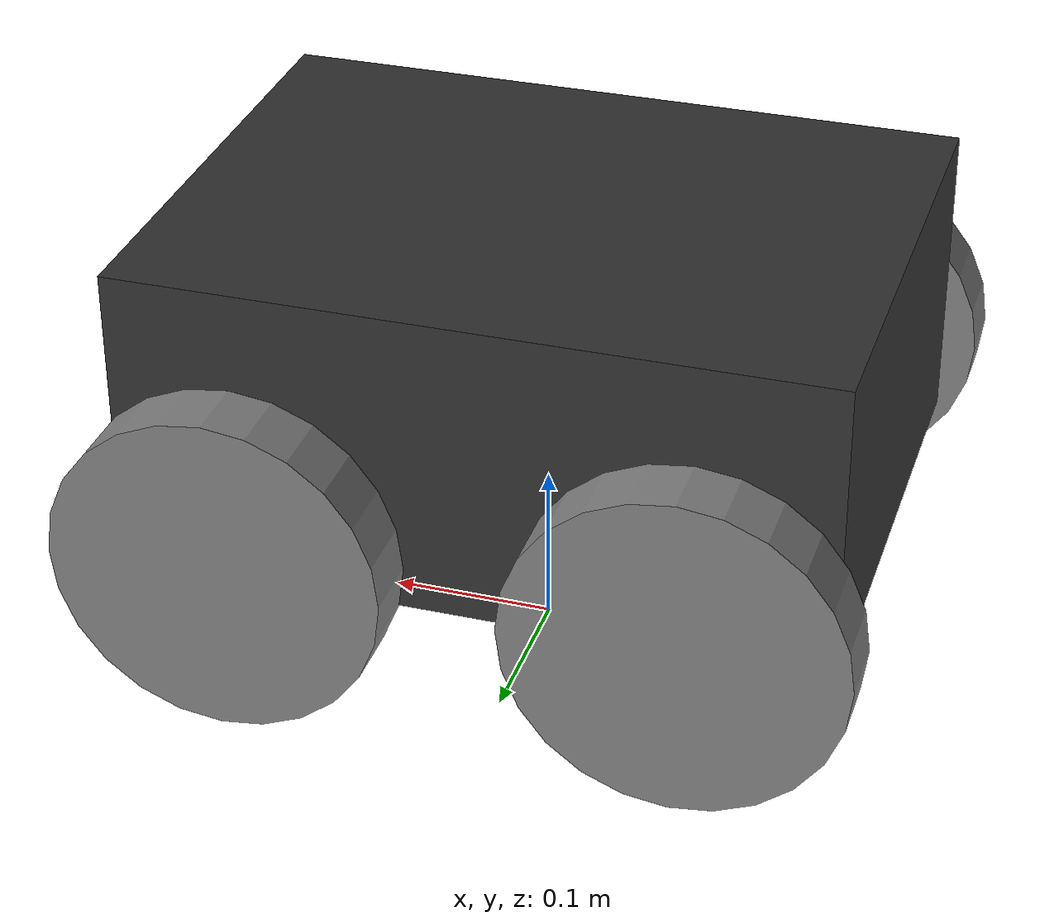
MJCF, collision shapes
<mujoco model="jackal">
	<compiler angle="radian" meshdir="meshes/" />

    <asset>
        <!--Meshes-->
        <mesh name="base" file="jackal-base.stl" />
        <mesh name="wheel" file="jackal-wheel.stl" />
        <mesh name="fender" file="jackal-fender.stl" />
    </asset>

	<worldbody>
		<body name="jackal" pos="0 0 0.1" quat="1 0 0 0">
            <site name="jackal" pos="0 0 0" />
            <freejoint name="jackal" />

            <geom pos="0 0 -0.0655" quat="0.5 0.5 0.5 0.5" type="mesh" contype="0" conaffinity="0" group="1" rgba="0.15 0.15 0.15 1" mesh="base"/>
            <geom pos="0 0 0" quat="0 0 0 1" type="mesh" contype="0" conaffinity="0" group="1" rgba="1.0 0.7 0 1" mesh="fender"/>
            <geom pos="0 0 0" quat="1 0 0 0" type="mesh" contype="0" conaffinity="0" group="1" rgba="1.0 0.7 0 1" mesh="fender"/>
            <geom pos="0.131 0.187795 0.0345" quat="0.707107 0.707107 0 0" type="mesh" contype="0" conaffinity="0" group="1" rgba="0.15 0.15 0.15 1" mesh="wheel"/>
            <geom pos="0.131 -0.187795 0.0345" quat="0.707107 0.707107 0 0" type="mesh" contype="0" conaffinity="0" group="1" rgba="0.15 0.15 0.15 1" mesh="wheel"/>
            <geom pos="-0.131 0.187795 0.0345" quat="0.707107 0.707107 0 0" type="mesh" contype="0" conaffinity="0" group="1" rgba="0.15 0.15 0.15 1" mesh="wheel"/>
            <geom pos="-0.131 -0.187795 0.0345" quat="0.707107 0.707107 0 0" type="mesh" contype="0" conaffinity="0" group="1" rgba="0.15 0.15 0.15 1" mesh="wheel"/>

            <body name="chassis">
                <geom name="chassis" size="0.21 0.155 0.092" pos="0 0 0.092" type="box" rgba="0.2 0.2 0.2 1" group="5" />
                <inertial pos="0.012 0.002 0.067" mass="16.523" fullinertia="0.3136 0.3922 0.4485 -0.0008 0.0164 -0.0009" />
            </body>

            <body name="front_left_wheel" pos="0.131 0.187795 0.0345">
                <joint type="hinge" name="front_left_wheel" axis="0 1 0"/>
                <geom type="cylinder" name="front_left_wheel" size="0.098 0.02" quat="0.707107 0.707107 0 0" group="5" condim="4"/>
                <inertial pos="0 0 0" mass="0.477" fullinertia="0.0013 0.0024 0.0013 0 0 0" />
            </body>
            <body name="front_right_wheel" pos="0.131 -0.187795 0.0345">
                <joint type="hinge" name="front_right_wheel" axis="0 1 0"/>
                <geom type="cylinder" name="front_right_wheel" size="0.098 0.02" quat="0.707107 0.707107 0 0" group="5" condim="4"/>
                <inertial pos="0 0 0" mass="0.477" fullinertia="0.0013 0.0024 0.0013 0 0 0" />
            </body>
            <body name="rear_left_wheel" pos="-0.131 0.187795 0.0345">
                <joint type="hinge" name="rear_left_wheel" axis="0 1 0"/>
                <geom type="cylinder" name="rear_left_wheel" size="0.098 0.02" quat="0.707107 0.707107 0 0" group="5" condim="4"/>
                <inertial pos="0 0 0" mass="0.477" fullinertia="0.0013 0.0024 0.0013 0 0 0" />
            </body>
            <body name="rear_right_wheel" pos="-0.131 -0.187795 0.0345">
                <joint type="hinge" name="rear_right_wheel" axis="0 1 0"/>
                <geom type="cylinder" name="rear_right_wheel" size="0.098 0.02" quat="0.707107 0.707107 0 0" group="5" condim="4"/>
                <inertial pos="0 0 0" mass="0.477" fullinertia="0.0013 0.0024 0.0013 0 0 0" />
            </body>
		</body>
	</worldbody>

    <sensor>
        <!-- Used for observation -->
        <accelerometer site="jackal" name="accelerometer"/>
        <velocimeter site="jackal" name="velocimeter"/>
        <gyro site="jackal" name="gyro"/>
    </sensor>

    <tendon>
        <fixed name="left_differential">
            <joint joint="front_left_wheel" coef="1" />
            <joint joint="rear_left_wheel" coef="1" />
        </fixed>

        <fixed name="right_differential">
            <joint joint="front_right_wheel" coef="1" />
            <joint joint="front_left_wheel" coef="1" />
        </fixed>
    </tendon>

    <!--ACTUATORS-->
    <actuator>
        <velocity joint="front_left_wheel" name="front_left_wheel" ctrlrange="-20 20" ctrllimited="true" />
        <velocity joint="front_right_wheel" name="front_right_wheel" ctrlrange="-20 20" ctrllimited="true" />
        <velocity joint="rear_right_wheel" name="rear_right_wheel" ctrlrange="-20 20" ctrllimited="true" />
        <velocity joint="rear_left_wheel" name="rear_left_wheel" ctrlrange="-20 20" ctrllimited="true" />

    </actuator>
</mujoco>
